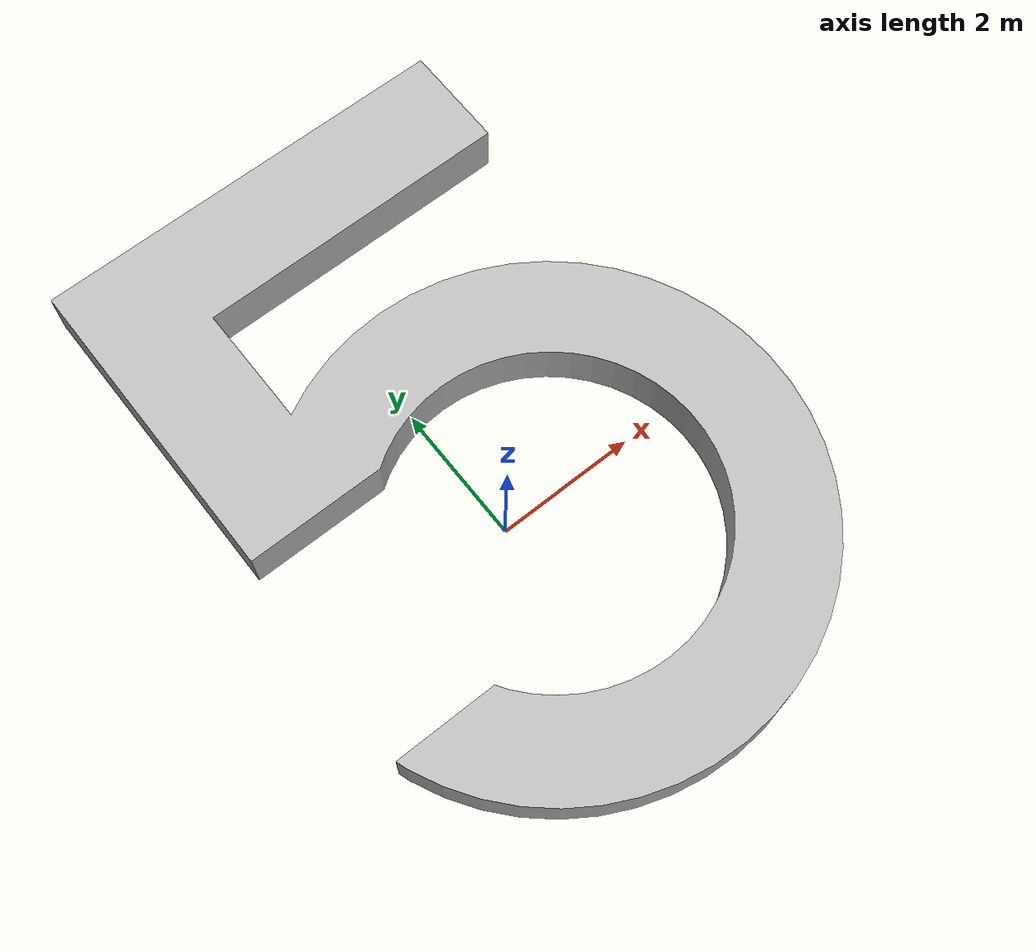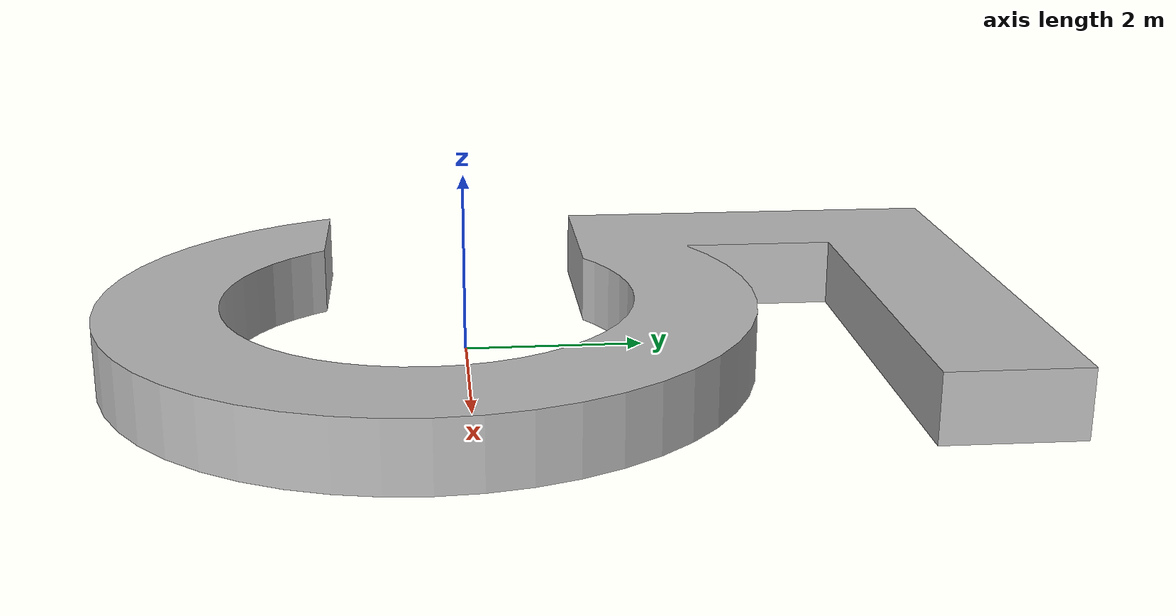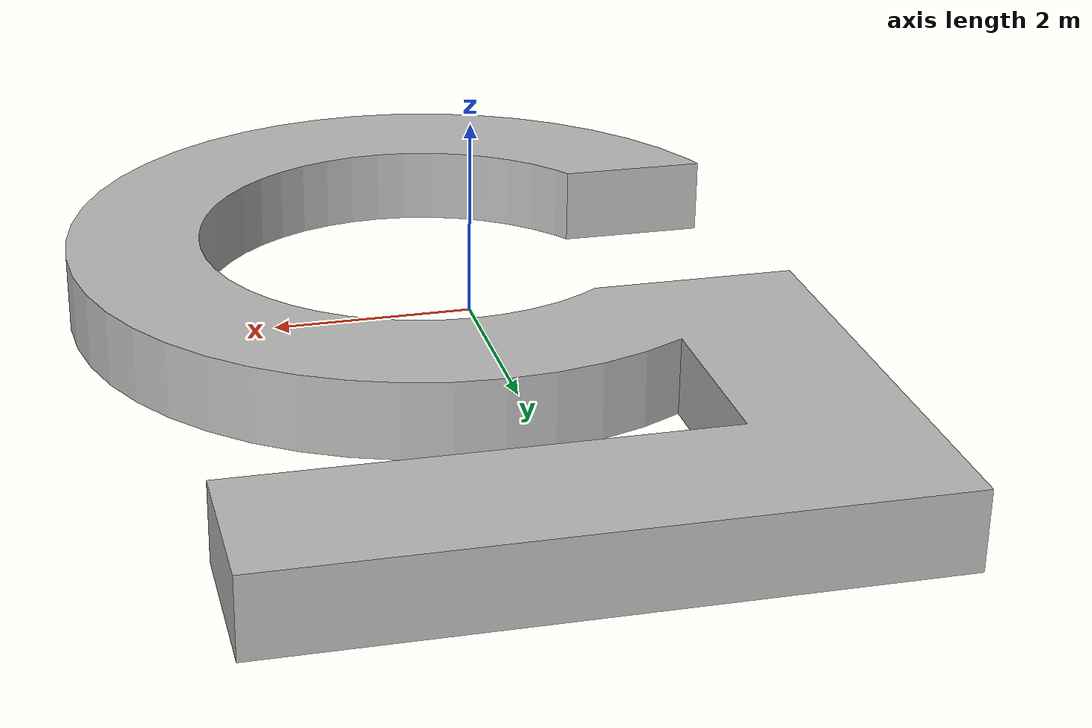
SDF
<?xml version="1.0" ?>
<sdf version="1.7">
<model name="cinco">

  <static>true</static>

  <link name="link">

    <collision name="collision">
      <geometry>
        <mesh>
          <uri>model://cinco/meshes/cinco.stl</uri>
        </mesh>
      </geometry>
    </collision>

    <visual name="visual">
      <geometry>
        <mesh>
          <uri>model://cinco/meshes/cinco.stl</uri>
        </mesh>
      </geometry>
    </visual>

  </link>

</model>
</sdf>
